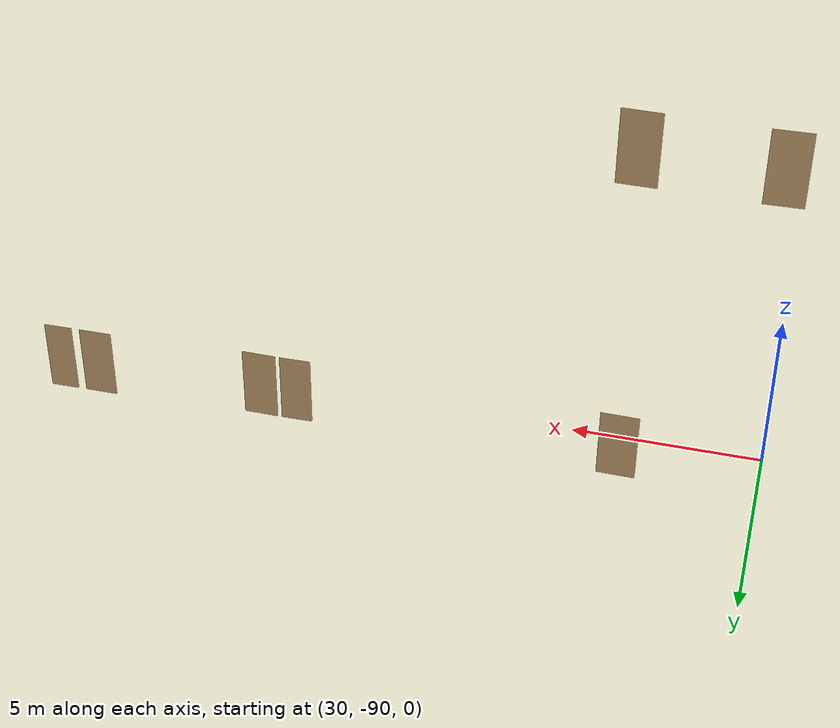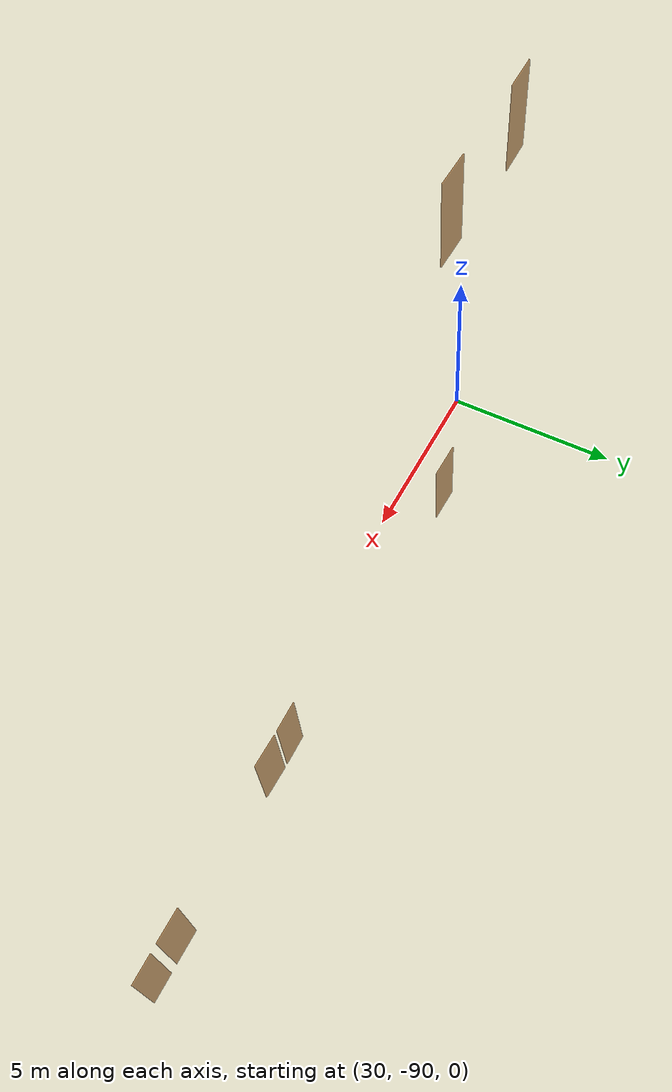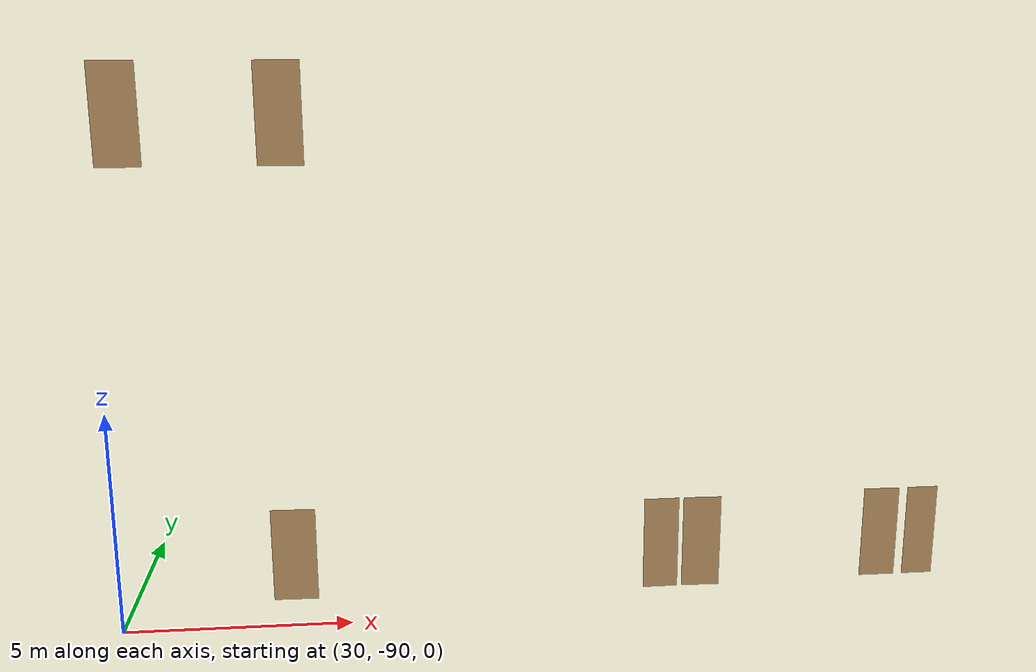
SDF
<sdf version="1.7">
 <world name="sim_world">
  <model name="part3_2">
   <pose>48.50427673222269 -88.65364463349557 0.0 0 0 -3.1355477843824153</pose>
   <link name="right">
    <pose>0 0 1.11 0 0 0</pose>
    <visual name="right_visual">
     <geometry><box><size>0.7226512681972751 0.03 2.2</size></box></geometry>
     <material>
      <ambient>0.5 0.25 0 0.6</ambient>
      <diffuse>0.5 0.25 0 0.6</diffuse>
      <pbr><metal><metalness>0.0</metalness></metal></pbr>
     </material>
    </visual>
    <collision name="right_collision">
     <geometry><box><size>0.7226512681972751 0.03 2.2</size></box></geometry>
     <surface><contact><collide_bitmask>0x02</collide_bitmask></contact></surface>
    </collision>
    <inertial>
     <mass>50.0</mass>
     <inertia><ixx>20.17041666666667</ixx><iyy>22.342603564279717</iyy><izz>2.179686897613042</izz></inertia>
    </inertial>
   </link>
   <joint name="right_joint" type="revolute">
    <parent>world</parent>
    <child>right</child>
    <axis><xyz>0 0 1</xyz><limit><lower>0</lower><upper>1.57</upper></limit></axis>
    <pose>0.36632563409863755 0 0 0 0 0</pose>
   </joint>
   <plugin name="register_component" filename="libregister_component.so">
    <component name="Door">
     <v_max_door>0.5</v_max_door>
     <a_max_door>0.3</a_max_door>
     <a_nom_door>0.15</a_nom_door>
     <dx_min_door>0.01</dx_min_door>
     <f_max_door>500.0</f_max_door>
     <ros_interface>true</ros_interface>
     <door name="part3_2" type="SwingDoor" left_joint_name="empty_joint" right_joint_name="right_joint"/>
    </component>
   </plugin>
  </model>
  <model name="part3_3">
   <pose>47.50300121530657 -88.66030381088514 0.0 0 0 3.141592653589793</pose>
   <link name="right">
    <pose>0 0 1.11 0 0 0</pose>
    <visual name="right_visual">
     <geometry><box><size>0.8425191217595775 0.03 2.2</size></box></geometry>
     <material>
      <ambient>0.5 0.25 0 0.6</ambient>
      <diffuse>0.5 0.25 0 0.6</diffuse>
      <pbr><metal><metalness>0.0</metalness></metal></pbr>
     </material>
    </visual>
    <collision name="right_collision">
     <geometry><box><size>0.8425191217595775 0.03 2.2</size></box></geometry>
     <surface><contact><collide_bitmask>0x02</collide_bitmask></contact></surface>
    </collision>
    <inertial>
     <mass>50.0</mass>
     <inertia><ixx>20.17041666666667</ixx><iyy>23.12432696054388</iyy><izz>2.9614102938772078</izz></inertia>
    </inertial>
   </link>
   <joint name="right_joint" type="revolute">
    <parent>world</parent>
    <child>right</child>
    <axis><xyz>0 0 -1</xyz><limit><lower>0</lower><upper>1.57</upper></limit></axis>
    <pose>0.4262595608797888 0 0 0 0 0</pose>
   </joint>
   <plugin name="register_component" filename="libregister_component.so">
    <component name="Door">
     <v_max_door>0.5</v_max_door>
     <a_max_door>0.3</a_max_door>
     <a_nom_door>0.15</a_nom_door>
     <dx_min_door>0.01</dx_min_door>
     <f_max_door>500.0</f_max_door>
     <ros_interface>true</ros_interface>
     <door name="part3_3" type="SwingDoor" left_joint_name="empty_joint" right_joint_name="right_joint"/>
    </component>
   </plugin>
  </model>
  <model name="part3_5">
   <pose>43.1260603099351 -88.81096970510038 0.0 0 0 3.126024748029792</pose>
   <link name="right">
    <pose>0 0 1.11 0 0 0</pose>
    <visual name="right_visual">
     <geometry><box><size>0.8836736214570763 0.03 2.2</size></box></geometry>
     <material>
      <ambient>0.5 0.25 0 0.6</ambient>
      <diffuse>0.5 0.25 0 0.6</diffuse>
      <pbr><metal><metalness>0.0</metalness></metal></pbr>
     </material>
    </visual>
    <collision name="right_collision">
     <geometry><box><size>0.8836736214570763 0.03 2.2</size></box></geometry>
     <surface><contact><collide_bitmask>0x02</collide_bitmask></contact></surface>
    </collision>
    <inertial>
     <mass>50.0</mass>
     <inertia><ixx>20.17041666666667</ixx><iyy>23.420329455246105</iyy><izz>3.257412788579434</izz></inertia>
    </inertial>
   </link>
   <joint name="right_joint" type="revolute">
    <parent>world</parent>
    <child>right</child>
    <axis><xyz>0 0 1</xyz><limit><lower>0</lower><upper>1.57</upper></limit></axis>
    <pose>0.44683681072853815 0 0 0 0 0</pose>
   </joint>
   <plugin name="register_component" filename="libregister_component.so">
    <component name="Door">
     <v_max_door>0.5</v_max_door>
     <a_max_door>0.3</a_max_door>
     <a_nom_door>0.15</a_nom_door>
     <dx_min_door>0.01</dx_min_door>
     <f_max_door>500.0</f_max_door>
     <ros_interface>true</ros_interface>
     <door name="part3_5" type="SwingDoor" left_joint_name="empty_joint" right_joint_name="right_joint"/>
    </component>
   </plugin>
  </model>
  <model name="part3_8">
   <pose>42.16364871503711 -88.81034390288787 0.0 0 0 0.015412548336387423</pose>
   <link name="right">
    <pose>0 0 1.11 0 0 0</pose>
    <visual name="right_visual">
     <geometry><box><size>0.8114709939374763 0.03 2.2</size></box></geometry>
     <material>
      <ambient>0.5 0.25 0 0.6</ambient>
      <diffuse>0.5 0.25 0 0.6</diffuse>
      <pbr><metal><metalness>0.0</metalness></metal></pbr>
     </material>
    </visual>
    <collision name="right_collision">
     <geometry><box><size>0.8114709939374763 0.03 2.2</size></box></geometry>
     <surface><contact><collide_bitmask>0x02</collide_bitmask></contact></surface>
    </collision>
    <inertial>
     <mass>50.0</mass>
     <inertia><ixx>20.17041666666667</ixx><iyy>22.910354891674487</iyy><izz>2.747438225007816</izz></inertia>
    </inertial>
   </link>
   <joint name="right_joint" type="revolute">
    <parent>world</parent>
    <child>right</child>
    <axis><xyz>0 0 -1</xyz><limit><lower>0</lower><upper>1.57</upper></limit></axis>
    <pose>0.4107354969687382 0 0 0 0 0</pose>
   </joint>
   <plugin name="register_component" filename="libregister_component.so">
    <component name="Door">
     <v_max_door>0.5</v_max_door>
     <a_max_door>0.3</a_max_door>
     <a_nom_door>0.15</a_nom_door>
     <dx_min_door>0.01</dx_min_door>
     <f_max_door>500.0</f_max_door>
     <ros_interface>true</ros_interface>
     <door name="part3_8" type="SwingDoor" left_joint_name="empty_joint" right_joint_name="right_joint"/>
    </component>
   </plugin>
  </model>
  <model name="part4_8_end">
   <pose>33.65153515906184 -88.68170945579521 0.0 0 0 3.1271985868197545</pose>
   <link name="right">
    <pose>0 0 1.11 0 0 0</pose>
    <visual name="right_visual">
     <geometry><box><size>1.008943649608928 0.03 2.2</size></box></geometry>
     <material>
      <ambient>0.5 0.25 0 0.6</ambient>
      <diffuse>0.5 0.25 0 0.6</diffuse>
      <pbr><metal><metalness>0.0</metalness></metal></pbr>
     </material>
    </visual>
    <collision name="right_collision">
     <geometry><box><size>1.008943649608928 0.03 2.2</size></box></geometry>
     <surface><contact><collide_bitmask>0x02</collide_bitmask></contact></surface>
    </collision>
    <inertial>
     <mass>50.0</mass>
     <inertia><ixx>20.17041666666667</ixx><iyy>24.408197033692435</iyy><izz>4.245280367025763</izz></inertia>
    </inertial>
   </link>
   <joint name="right_joint" type="revolute">
    <parent>world</parent>
    <child>right</child>
    <axis><xyz>0 0 1</xyz><limit><lower>0</lower><upper>1.57</upper></limit></axis>
    <pose>0.509471824804464 0 0 0 0 0</pose>
   </joint>
   <plugin name="register_component" filename="libregister_component.so">
    <component name="Door">
     <v_max_door>0.5</v_max_door>
     <a_max_door>0.3</a_max_door>
     <a_nom_door>0.15</a_nom_door>
     <dx_min_door>0.01</dx_min_door>
     <f_max_door>500.0</f_max_door>
     <ros_interface>true</ros_interface>
     <door name="part4_8_end" type="SwingDoor" left_joint_name="empty_joint" right_joint_name="right_joint"/>
    </component>
   </plugin>
  </model>
  <model name="L3_part1_11">
   <pose>33.773080458486476 -88.5893069262021 10.0 0 0 -3.1397482828974157</pose>
   <link name="right">
    <pose>0 0 1.11 0 0 0</pose>
    <visual name="right_visual">
     <geometry><box><size>0.9852517059840824 0.03 2.2</size></box></geometry>
     <material>
      <ambient>0.5 0.25 0 0.6</ambient>
      <diffuse>0.5 0.25 0 0.6</diffuse>
      <pbr><metal><metalness>0.0</metalness></metal></pbr>
     </material>
    </visual>
    <collision name="right_collision">
     <geometry><box><size>0.9852517059840824 0.03 2.2</size></box></geometry>
     <surface><contact><collide_bitmask>0x02</collide_bitmask></contact></surface>
    </collision>
    <inertial>
     <mass>50.0</mass>
     <inertia><ixx>20.17041666666667</ixx><iyy>24.21133718393561</iyy><izz>4.048420517268937</izz></inertia>
    </inertial>
   </link>
   <joint name="right_joint" type="revolute">
    <parent>world</parent>
    <child>right</child>
    <axis><xyz>0 0 1</xyz><limit><lower>0</lower><upper>1.57</upper></limit></axis>
    <pose>0.4976258529920412 0 0 0 0 0</pose>
   </joint>
   <plugin name="register_component" filename="libregister_component.so">
    <component name="Door">
     <v_max_door>0.5</v_max_door>
     <a_max_door>0.3</a_max_door>
     <a_nom_door>0.15</a_nom_door>
     <dx_min_door>0.01</dx_min_door>
     <f_max_door>500.0</f_max_door>
     <ros_interface>true</ros_interface>
     <door name="L3_part1_11" type="SwingDoor" left_joint_name="empty_joint" right_joint_name="right_joint"/>
    </component>
   </plugin>
  </model>
  <model name="L3_part1_12">
   <pose>30.395552176893585 -88.61029101745908 10.0 0 0 -3.109743154855485</pose>
   <link name="right">
    <pose>0 0 1.11 0 0 0</pose>
    <visual name="right_visual">
     <geometry><box><size>0.9736224720026919 0.03 2.2</size></box></geometry>
     <material>
      <ambient>0.5 0.25 0 0.6</ambient>
      <diffuse>0.5 0.25 0 0.6</diffuse>
      <pbr><metal><metalness>0.0</metalness></metal></pbr>
     </material>
    </visual>
    <collision name="right_collision">
     <geometry><box><size>0.9736224720026919 0.03 2.2</size></box></geometry>
     <surface><contact><collide_bitmask>0x02</collide_bitmask></contact></surface>
    </collision>
    <inertial>
     <mass>50.0</mass>
     <inertia><ixx>20.17041666666667</ixx><iyy>24.116419658285977</iyy><izz>3.953502991619303</izz></inertia>
    </inertial>
   </link>
   <joint name="right_joint" type="revolute">
    <parent>world</parent>
    <child>right</child>
    <axis><xyz>0 0 -1</xyz><limit><lower>0</lower><upper>1.57</upper></limit></axis>
    <pose>0.49181123600134596 0 0 0 0 0</pose>
   </joint>
   <plugin name="register_component" filename="libregister_component.so">
    <component name="Door">
     <v_max_door>0.5</v_max_door>
     <a_max_door>0.3</a_max_door>
     <a_nom_door>0.15</a_nom_door>
     <dx_min_door>0.01</dx_min_door>
     <f_max_door>500.0</f_max_door>
     <ros_interface>true</ros_interface>
     <door name="L3_part1_12" type="SwingDoor" left_joint_name="empty_joint" right_joint_name="right_joint"/>
    </component>
   </plugin>
  </model>
 </world>
</sdf>
